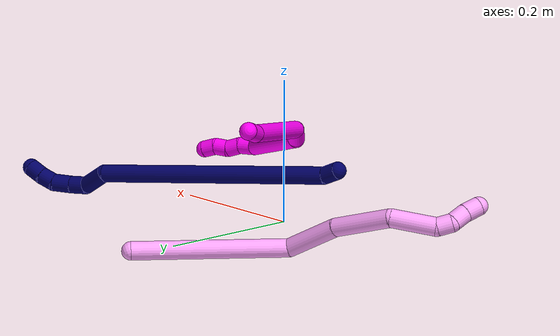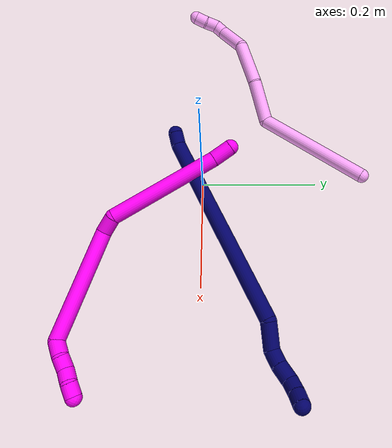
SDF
<sdf version="1.7">
 <world name="default">
  <model name="photoneo_s_sensor">
   <static>1</static>
   <pose>0 0 2 1.57079 1.57079 3.14159</pose>
   <link name="link">
    <inertial><mass>0.1</mass></inertial>
    <sensor name="sensor" type="depth">
     <update_rate>30</update_rate>
     <camera>
      <horizontal_fov>1.22</horizontal_fov>
      <image><width>1920</width><height>1200</height><format>B8G8R8</format></image>
      <clip><near>0.1</near><far>4</far></clip>
      <depth_camera><output>points</output></depth_camera>
     </camera>
     <plugin name="camera_plugin" filename="libgazebo_ros_depth_camera.so">
      <baseline>0.2</baseline>
      <alwaysOn>1</alwaysOn>
      <updateRate>0.0</updateRate>
      <cameraName>camera_ir</cameraName>
      <imageTopicName>/camera/color/image_raw</imageTopicName>
      <cameraInfoTopicName>/camera/color/camera_info</cameraInfoTopicName>
      <depthImageTopicName>/camera/depth/image_raw</depthImageTopicName>
      <depthImageCameraInfoTopicName>/camera/depth/camera_info</depthImageCameraInfoTopicName>
      <pointCloudTopicName>/camera/depth/points</pointCloudTopicName>
      <frameName>fr_optical</frameName>
      <pointCloudCutoff>0.1</pointCloudCutoff>
      <pointCloudCutoffMax>2.0</pointCloudCutoffMax>
      <distortionK1>0</distortionK1>
      <distortionK2>0</distortionK2>
      <distortionK3>0</distortionK3>
      <distortionT1>0</distortionT1>
      <distortionT2>0</distortionT2>
      <CxPrime>0</CxPrime>
      <Cx>0</Cx>
      <Cy>0</Cy>
      <focalLength>0</focalLength>
      <hackBaseline>0</hackBaseline>
     </plugin>
    </sensor>
   </link>
  </model>
  <model name="bin">
   <static>1</static>
   <link name="bottom">
    <collision name="collision-bottom">
     <pose>0 0 -0.01 0 -0 0</pose>
     <geometry><box><size>0.8 0.6 0.02</size></box></geometry>
     <surface>
      <friction><ode><mu>100</mu><mu2>100</mu2></ode></friction>
      <contact><collide_bitmask>65535</collide_bitmask></contact>
     </surface>
    </collision>
   </link>
   <link name="west_wall">
    <collision name="collision-west_wall">
     <pose>-0.41 0 0.1 0 -0 0</pose>
     <geometry><box><size>0.02 0.6 0.2</size></box></geometry>
     <surface>
      <friction><ode><mu>100</mu><mu2>100</mu2></ode></friction>
      <contact><collide_bitmask>65535</collide_bitmask></contact>
     </surface>
    </collision>
   </link>
   <link name="east_wall">
    <collision name="collision-east_wall">
     <pose>0.41 0 0.1 0 -0 0</pose>
     <geometry><box><size>0.02 0.6 0.2</size></box></geometry>
     <surface>
      <friction><ode><mu>100</mu><mu2>100</mu2></ode></friction>
      <contact><collide_bitmask>65535</collide_bitmask></contact>
     </surface>
    </collision>
   </link>
   <link name="south_wall">
    <collision name="collision-south_wall">
     <pose>0 -0.31 0.1 0 -0 0</pose>
     <geometry><box><size>0.8 0.02 0.2</size></box></geometry>
     <surface>
      <friction><ode><mu>100</mu><mu2>100</mu2></ode></friction>
      <contact><collide_bitmask>65535</collide_bitmask></contact>
     </surface>
    </collision>
   </link>
   <link name="north_wall">
    <collision name="collision-north_wall">
     <pose>0 0.31 0.1 0 -0 0</pose>
     <geometry><box><size>0.8 0.02 0.2</size></box></geometry>
     <surface>
      <friction><ode><mu>100</mu><mu2>100</mu2></ode></friction>
      <contact><collide_bitmask>65535</collide_bitmask></contact>
     </surface>
    </collision>
   </link>
  </model>
  <model name="4">
   <static>0</static>
   <link name="4">
    <collision name="collision-cylinder-e_1_1_4">
     <pose>-0.009597 -0.035598 0.098198 0.34778 -0.09162 -0.016105</pose>
     <geometry><cylinder><radius>0.0125</radius><length>0.209782</length></cylinder></geometry>
     <surface>
      <friction><ode><mu>1.16</mu><mu2>1.16</mu2><slip1>0</slip1><slip2>0</slip2></ode></friction>
      <contact><ode><kp>1e+06</kp><kd>1</kd><max_vel>0</max_vel><min_depth>0.001</min_depth></ode></contact>
     </surface>
    </collision>
    <visual name="visual-cylinder-e_1_1_4">
     <pose>-0.009597 -0.035598 0.098198 0.34778 -0.09162 -0.016105</pose>
     <geometry><cylinder><radius>0.0125</radius><length>0.209782</length></cylinder></geometry>
     <material><ambient>1 0.65098 0.996078 1</ambient></material>
    </visual>
    <collision name="collision-cylinder-e_2_4_5">
     <pose>-0.035917 -0.058673 0.23008 -0.355927 -0.435564 0.079564</pose>
     <geometry><cylinder><radius>0.0125</radius><length>0.079276</length></cylinder></geometry>
     <surface>
      <friction><ode><mu>1.16</mu><mu2>1.16</mu2><slip1>0</slip1><slip2>0</slip2></ode></friction>
      <contact><ode><kp>1e+06</kp><kd>1</kd><max_vel>0</max_vel><min_depth>0.001</min_depth></ode></contact>
     </surface>
    </collision>
    <visual name="visual-cylinder-e_2_4_5">
     <pose>-0.035917 -0.058673 0.23008 -0.355927 -0.435564 0.079564</pose>
     <geometry><cylinder><radius>0.0125</radius><length>0.079276</length></cylinder></geometry>
     <material><ambient>1 0.65098 0.996078 1</ambient></material>
    </visual>
    <collision name="collision-cylinder-e_3_5_6">
     <pose>-0.074283 -0.040933 0.299748 -0.143997 -0.536884 0.039674</pose>
     <geometry><cylinder><radius>0.0125</radius><length>0.084626</length></cylinder></geometry>
     <surface>
      <friction><ode><mu>1.16</mu><mu2>1.16</mu2><slip1>0</slip1><slip2>0</slip2></ode></friction>
      <contact><ode><kp>1e+06</kp><kd>1</kd><max_vel>0</max_vel><min_depth>0.001</min_depth></ode></contact>
     </surface>
    </collision>
    <visual name="visual-cylinder-e_3_5_6">
     <pose>-0.074283 -0.040933 0.299748 -0.143997 -0.536884 0.039674</pose>
     <geometry><cylinder><radius>0.0125</radius><length>0.084626</length></cylinder></geometry>
     <material><ambient>1 0.65098 0.996078 1</ambient></material>
    </visual>
    <collision name="collision-cylinder-e_4_6_7">
     <pose>-0.108268 -0.04682 0.361531 0.406437 -0.414061 -0.086509</pose>
     <geometry><cylinder><radius>0.0125</radius><length>0.061361</length></cylinder></geometry>
     <surface>
      <friction><ode><mu>1.16</mu><mu2>1.16</mu2><slip1>0</slip1><slip2>0</slip2></ode></friction>
      <contact><ode><kp>1e+06</kp><kd>1</kd><max_vel>0</max_vel><min_depth>0.001</min_depth></ode></contact>
     </surface>
    </collision>
    <visual name="visual-cylinder-e_4_6_7">
     <pose>-0.108268 -0.04682 0.361531 0.406437 -0.414061 -0.086509</pose>
     <geometry><cylinder><radius>0.0125</radius><length>0.061361</length></cylinder></geometry>
     <material><ambient>1 0.65098 0.996078 1</ambient></material>
    </visual>
    <collision name="collision-cylinder-e_5_7_8">
     <pose>-0.121209 -0.058672 0.397572 0.072902 -0.058137 -0.002121</pose>
     <geometry><cylinder><radius>0.0125</radius><length>0.020572</length></cylinder></geometry>
     <surface>
      <friction><ode><mu>1.16</mu><mu2>1.16</mu2><slip1>0</slip1><slip2>0</slip2></ode></friction>
      <contact><ode><kp>1e+06</kp><kd>1</kd><max_vel>0</max_vel><min_depth>0.001</min_depth></ode></contact>
     </surface>
    </collision>
    <visual name="visual-cylinder-e_5_7_8">
     <pose>-0.121209 -0.058672 0.397572 0.072902 -0.058137 -0.002121</pose>
     <geometry><cylinder><radius>0.0125</radius><length>0.020572</length></cylinder></geometry>
     <material><ambient>1 0.65098 0.996078 1</ambient></material>
    </visual>
    <collision name="collision-cylinder-e_6_8_9">
     <pose>-0.115632 -0.059876 0.417553 0.046845 0.56459 0.013589</pose>
     <geometry><cylinder><radius>0.0125</radius><length>0.023083</length></cylinder></geometry>
     <surface>
      <friction><ode><mu>1.16</mu><mu2>1.16</mu2><slip1>0</slip1><slip2>0</slip2></ode></friction>
      <contact><ode><kp>1e+06</kp><kd>1</kd><max_vel>0</max_vel><min_depth>0.001</min_depth></ode></contact>
     </surface>
    </collision>
    <visual name="visual-cylinder-e_6_8_9">
     <pose>-0.115632 -0.059876 0.417553 0.046845 0.56459 0.013589</pose>
     <geometry><cylinder><radius>0.0125</radius><length>0.023083</length></cylinder></geometry>
     <material><ambient>1 0.65098 0.996078 1</ambient></material>
    </visual>
    <collision name="collision-cylinder-e_7_9_2">
     <pose>-0.105895 -0.061388 0.437275 0.105258 0.340912 0.018134</pose>
     <geometry><cylinder><radius>0.0125</radius><length>0.0213</length></cylinder></geometry>
     <surface>
      <friction><ode><mu>1.16</mu><mu2>1.16</mu2><slip1>0</slip1><slip2>0</slip2></ode></friction>
      <contact><ode><kp>1e+06</kp><kd>1</kd><max_vel>0</max_vel><min_depth>0.001</min_depth></ode></contact>
     </surface>
    </collision>
    <visual name="visual-cylinder-e_7_9_2">
     <pose>-0.105895 -0.061388 0.437275 0.105258 0.340912 0.018134</pose>
     <geometry><cylinder><radius>0.0125</radius><length>0.0213</length></cylinder></geometry>
     <material><ambient>1 0.65098 0.996078 1</ambient></material>
    </visual>
    <collision name="collision-sphere-2">
     <pose>-0.102334 -0.062442 0.447256 0 -0 0</pose>
     <geometry><sphere><radius>0.0125</radius></sphere></geometry>
     <surface>
      <friction><ode><mu>1.16</mu><mu2>1.16</mu2><slip1>0</slip1><slip2>0</slip2></ode></friction>
      <contact><ode><kp>1e+06</kp><kd>1</kd><max_vel>0</max_vel><min_depth>0.001</min_depth></ode></contact>
     </surface>
    </collision>
    <visual name="visual-sphere-2">
     <pose>-0.102334 -0.062442 0.447256 0 -0 0</pose>
     <geometry><sphere><radius>0.0125</radius></sphere></geometry>
     <material><ambient>1 0.65098 0.996078 1</ambient></material>
    </visual>
    <collision name="collision-sphere-9">
     <pose>-0.109456 -0.060333 0.427293 0 -0 0</pose>
     <geometry><sphere><radius>0.0125</radius></sphere></geometry>
     <surface>
      <friction><ode><mu>1.16</mu><mu2>1.16</mu2><slip1>0</slip1><slip2>0</slip2></ode></friction>
      <contact><ode><kp>1e+06</kp><kd>1</kd><max_vel>0</max_vel><min_depth>0.001</min_depth></ode></contact>
     </surface>
    </collision>
    <visual name="visual-sphere-9">
     <pose>-0.109456 -0.060333 0.427293 0 -0 0</pose>
     <geometry><sphere><radius>0.0125</radius></sphere></geometry>
     <material><ambient>1 0.65098 0.996078 1</ambient></material>
    </visual>
    <collision name="collision-sphere-4">
     <pose>-0.019193 -0.071196 0.196395 0 -0 0</pose>
     <geometry><sphere><radius>0.0125</radius></sphere></geometry>
     <surface>
      <friction><ode><mu>1.16</mu><mu2>1.16</mu2><slip1>0</slip1><slip2>0</slip2></ode></friction>
      <contact><ode><kp>1e+06</kp><kd>1</kd><max_vel>0</max_vel><min_depth>0.001</min_depth></ode></contact>
     </surface>
    </collision>
    <visual name="visual-sphere-4">
     <pose>-0.019193 -0.071196 0.196395 0 -0 0</pose>
     <geometry><sphere><radius>0.0125</radius></sphere></geometry>
     <material><ambient>1 0.65098 0.996078 1</ambient></material>
    </visual>
    <collision name="collision-sphere-1">
     <geometry><sphere><radius>0.0125</radius></sphere></geometry>
     <surface>
      <friction><ode><mu>1.16</mu><mu2>1.16</mu2><slip1>0</slip1><slip2>0</slip2></ode></friction>
      <contact><ode><kp>1e+06</kp><kd>1</kd><max_vel>0</max_vel><min_depth>0.001</min_depth></ode></contact>
     </surface>
    </collision>
    <visual name="visual-sphere-1">
     <geometry><sphere><radius>0.0125</radius></sphere></geometry>
     <material><ambient>1 0.65098 0.996078 1</ambient></material>
    </visual>
    <collision name="collision-sphere-8">
     <pose>-0.121807 -0.05942 0.407814 0 -0 0</pose>
     <geometry><sphere><radius>0.0125</radius></sphere></geometry>
     <surface>
      <friction><ode><mu>1.16</mu><mu2>1.16</mu2><slip1>0</slip1><slip2>0</slip2></ode></friction>
      <contact><ode><kp>1e+06</kp><kd>1</kd><max_vel>0</max_vel><min_depth>0.001</min_depth></ode></contact>
     </surface>
    </collision>
    <visual name="visual-sphere-8">
     <pose>-0.121807 -0.05942 0.407814 0 -0 0</pose>
     <geometry><sphere><radius>0.0125</radius></sphere></geometry>
     <material><ambient>1 0.65098 0.996078 1</ambient></material>
    </visual>
    <collision name="collision-sphere-5">
     <pose>-0.052642 -0.046151 0.263765 0 -0 0</pose>
     <geometry><sphere><radius>0.0125</radius></sphere></geometry>
     <surface>
      <friction><ode><mu>1.16</mu><mu2>1.16</mu2><slip1>0</slip1><slip2>0</slip2></ode></friction>
      <contact><ode><kp>1e+06</kp><kd>1</kd><max_vel>0</max_vel><min_depth>0.001</min_depth></ode></contact>
     </surface>
    </collision>
    <visual name="visual-sphere-5">
     <pose>-0.052642 -0.046151 0.263765 0 -0 0</pose>
     <geometry><sphere><radius>0.0125</radius></sphere></geometry>
     <material><ambient>1 0.65098 0.996078 1</ambient></material>
    </visual>
    <collision name="collision-sphere-6">
     <pose>-0.095924 -0.035716 0.335731 0 -0 0</pose>
     <geometry><sphere><radius>0.0125</radius></sphere></geometry>
     <surface>
      <friction><ode><mu>1.16</mu><mu2>1.16</mu2><slip1>0</slip1><slip2>0</slip2></ode></friction>
      <contact><ode><kp>1e+06</kp><kd>1</kd><max_vel>0</max_vel><min_depth>0.001</min_depth></ode></contact>
     </surface>
    </collision>
    <visual name="visual-sphere-6">
     <pose>-0.095924 -0.035716 0.335731 0 -0 0</pose>
     <geometry><sphere><radius>0.0125</radius></sphere></geometry>
     <material><ambient>1 0.65098 0.996078 1</ambient></material>
    </visual>
    <collision name="collision-sphere-7">
     <pose>-0.120612 -0.057924 0.387331 0 -0 0</pose>
     <geometry><sphere><radius>0.0125</radius></sphere></geometry>
     <surface>
      <friction><ode><mu>1.16</mu><mu2>1.16</mu2><slip1>0</slip1><slip2>0</slip2></ode></friction>
      <contact><ode><kp>1e+06</kp><kd>1</kd><max_vel>0</max_vel><min_depth>0.001</min_depth></ode></contact>
     </surface>
    </collision>
    <visual name="visual-sphere-7">
     <pose>-0.120612 -0.057924 0.387331 0 -0 0</pose>
     <geometry><sphere><radius>0.0125</radius></sphere></geometry>
     <material><ambient>1 0.65098 0.996078 1</ambient></material>
    </visual>
    <inertial>
     <pose>-0.050417 -0.044706 0.227043 0 -0 0</pose>
     <mass>0.5</mass>
     <inertia>
      <ixx>0.000868</ixx>
      <ixy>0</ixy>
      <ixz>0</ixz>
      <iyy>0.000838</iyy>
      <iyz>0</iyz>
      <izz>0.000411</izz>
     </inertia>
    </inertial>
   </link>
   <pose>-0.012131 0.283326 0.011519 1.19258 -0.271106 -0.57025</pose>
  </model>
  <model name="7">
   <static>0</static>
   <link name="7">
    <collision name="collision-cylinder-e_1_1_4">
     <pose>0.007846 0.002909 -0.008121 -2.79765 0.738125 -2.29746</pose>
     <geometry><cylinder><radius>0.0125</radius><length>0.023321</length></cylinder></geometry>
     <surface>
      <friction><ode><mu>1.16</mu><mu2>1.16</mu2><slip1>0</slip1><slip2>0</slip2></ode></friction>
      <contact><ode><kp>1e+06</kp><kd>1</kd><max_vel>0</max_vel><min_depth>0.001</min_depth></ode></contact>
     </surface>
    </collision>
    <visual name="visual-cylinder-e_1_1_4">
     <pose>0.007846 0.002909 -0.008121 -2.79765 0.738125 -2.29746</pose>
     <geometry><cylinder><radius>0.0125</radius><length>0.023321</length></cylinder></geometry>
     <material><ambient>0.003922 0 0.403922 1</ambient></material>
    </visual>
    <collision name="collision-cylinder-e_2_4_5">
     <pose>0.141293 0.092173 -0.09072 -2.28248 0.833612 -1.53675</pose>
     <geometry><cylinder><radius>0.0125</radius><length>0.339291</length></cylinder></geometry>
     <surface>
      <friction><ode><mu>1.16</mu><mu2>1.16</mu2><slip1>0</slip1><slip2>0</slip2></ode></friction>
      <contact><ode><kp>1e+06</kp><kd>1</kd><max_vel>0</max_vel><min_depth>0.001</min_depth></ode></contact>
     </surface>
    </collision>
    <visual name="visual-cylinder-e_2_4_5">
     <pose>0.141293 0.092173 -0.09072 -2.28248 0.833612 -1.53675</pose>
     <geometry><cylinder><radius>0.0125</radius><length>0.339291</length></cylinder></geometry>
     <material><ambient>0.003922 0 0.403922 1</ambient></material>
    </visual>
    <collision name="collision-cylinder-e_3_5_6">
     <pose>0.280324 0.180227 -0.181991 -3.04085 0.672179 -2.85495</pose>
     <geometry><cylinder><radius>0.0125</radius><length>0.043141</length></cylinder></geometry>
     <surface>
      <friction><ode><mu>1.16</mu><mu2>1.16</mu2><slip1>0</slip1><slip2>0</slip2></ode></friction>
      <contact><ode><kp>1e+06</kp><kd>1</kd><max_vel>0</max_vel><min_depth>0.001</min_depth></ode></contact>
     </surface>
    </collision>
    <visual name="visual-cylinder-e_3_5_6">
     <pose>0.280324 0.180227 -0.181991 -3.04085 0.672179 -2.85495</pose>
     <geometry><cylinder><radius>0.0125</radius><length>0.043141</length></cylinder></geometry>
     <material><ambient>0.003922 0 0.403922 1</ambient></material>
    </visual>
    <collision name="collision-cylinder-e_4_6_7">
     <pose>0.302946 0.187993 -0.203625 -2.24414 0.869371 -1.53447</pose>
     <geometry><cylinder><radius>0.0125</radius><length>0.024061</length></cylinder></geometry>
     <surface>
      <friction><ode><mu>1.16</mu><mu2>1.16</mu2><slip1>0</slip1><slip2>0</slip2></ode></friction>
      <contact><ode><kp>1e+06</kp><kd>1</kd><max_vel>0</max_vel><min_depth>0.001</min_depth></ode></contact>
     </surface>
    </collision>
    <visual name="visual-cylinder-e_4_6_7">
     <pose>0.302946 0.187993 -0.203625 -2.24414 0.869371 -1.53447</pose>
     <geometry><cylinder><radius>0.0125</radius><length>0.024061</length></cylinder></geometry>
     <material><ambient>0.003922 0 0.403922 1</ambient></material>
    </visual>
    <collision name="collision-cylinder-e_5_7_8">
     <pose>0.321552 0.202662 -0.212704 -2.02873 0.776335 -1.16316</pose>
     <geometry><cylinder><radius>0.0125</radius><length>0.026874</length></cylinder></geometry>
     <surface>
      <friction><ode><mu>1.16</mu><mu2>1.16</mu2><slip1>0</slip1><slip2>0</slip2></ode></friction>
      <contact><ode><kp>1e+06</kp><kd>1</kd><max_vel>0</max_vel><min_depth>0.001</min_depth></ode></contact>
     </surface>
    </collision>
    <visual name="visual-cylinder-e_5_7_8">
     <pose>0.321552 0.202662 -0.212704 -2.02873 0.776335 -1.16316</pose>
     <geometry><cylinder><radius>0.0125</radius><length>0.026874</length></cylinder></geometry>
     <material><ambient>0.003922 0 0.403922 1</ambient></material>
    </visual>
    <collision name="collision-cylinder-e_6_8_9">
     <pose>0.339925 0.216842 -0.21696 -1.5738 1.01363 -1.01618</pose>
     <geometry><cylinder><radius>0.0125</radius><length>0.02111</length></cylinder></geometry>
     <surface>
      <friction><ode><mu>1.16</mu><mu2>1.16</mu2><slip1>0</slip1><slip2>0</slip2></ode></friction>
      <contact><ode><kp>1e+06</kp><kd>1</kd><max_vel>0</max_vel><min_depth>0.001</min_depth></ode></contact>
     </surface>
    </collision>
    <visual name="visual-cylinder-e_6_8_9">
     <pose>0.339925 0.216842 -0.21696 -1.5738 1.01363 -1.01618</pose>
     <geometry><cylinder><radius>0.0125</radius><length>0.02111</length></cylinder></geometry>
     <material><ambient>0.003922 0 0.403922 1</ambient></material>
    </visual>
    <collision name="collision-cylinder-e_7_9_2">
     <pose>0.35876 0.22735 -0.215782 -1.33298 1.09661 -0.895709</pose>
     <geometry><cylinder><radius>0.0125</radius><length>0.0222</length></cylinder></geometry>
     <surface>
      <friction><ode><mu>1.16</mu><mu2>1.16</mu2><slip1>0</slip1><slip2>0</slip2></ode></friction>
      <contact><ode><kp>1e+06</kp><kd>1</kd><max_vel>0</max_vel><min_depth>0.001</min_depth></ode></contact>
     </surface>
    </collision>
    <visual name="visual-cylinder-e_7_9_2">
     <pose>0.35876 0.22735 -0.215782 -1.33298 1.09661 -0.895709</pose>
     <geometry><cylinder><radius>0.0125</radius><length>0.0222</length></cylinder></geometry>
     <material><ambient>0.003922 0 0.403922 1</ambient></material>
    </visual>
    <collision name="collision-sphere-2">
     <pose>0.368635 0.232275 -0.214588 0 -0 0</pose>
     <geometry><sphere><radius>0.0125</radius></sphere></geometry>
     <surface>
      <friction><ode><mu>1.16</mu><mu2>1.16</mu2><slip1>0</slip1><slip2>0</slip2></ode></friction>
      <contact><ode><kp>1e+06</kp><kd>1</kd><max_vel>0</max_vel><min_depth>0.001</min_depth></ode></contact>
     </surface>
    </collision>
    <visual name="visual-sphere-2">
     <pose>0.368635 0.232275 -0.214588 0 -0 0</pose>
     <geometry><sphere><radius>0.0125</radius></sphere></geometry>
     <material><ambient>0.003922 0 0.403922 1</ambient></material>
    </visual>
    <collision name="collision-sphere-9">
     <pose>0.348884 0.222424 -0.216976 0 -0 0</pose>
     <geometry><sphere><radius>0.0125</radius></sphere></geometry>
     <surface>
      <friction><ode><mu>1.16</mu><mu2>1.16</mu2><slip1>0</slip1><slip2>0</slip2></ode></friction>
      <contact><ode><kp>1e+06</kp><kd>1</kd><max_vel>0</max_vel><min_depth>0.001</min_depth></ode></contact>
     </surface>
    </collision>
    <visual name="visual-sphere-9">
     <pose>0.348884 0.222424 -0.216976 0 -0 0</pose>
     <geometry><sphere><radius>0.0125</radius></sphere></geometry>
     <material><ambient>0.003922 0 0.403922 1</ambient></material>
    </visual>
    <collision name="collision-sphere-4">
     <pose>0.015693 0.005817 -0.016241 0 -0 0</pose>
     <geometry><sphere><radius>0.0125</radius></sphere></geometry>
     <surface>
      <friction><ode><mu>1.16</mu><mu2>1.16</mu2><slip1>0</slip1><slip2>0</slip2></ode></friction>
      <contact><ode><kp>1e+06</kp><kd>1</kd><max_vel>0</max_vel><min_depth>0.001</min_depth></ode></contact>
     </surface>
    </collision>
    <visual name="visual-sphere-4">
     <pose>0.015693 0.005817 -0.016241 0 -0 0</pose>
     <geometry><sphere><radius>0.0125</radius></sphere></geometry>
     <material><ambient>0.003922 0 0.403922 1</ambient></material>
    </visual>
    <collision name="collision-sphere-1">
     <geometry><sphere><radius>0.0125</radius></sphere></geometry>
     <surface>
      <friction><ode><mu>1.16</mu><mu2>1.16</mu2><slip1>0</slip1><slip2>0</slip2></ode></friction>
      <contact><ode><kp>1e+06</kp><kd>1</kd><max_vel>0</max_vel><min_depth>0.001</min_depth></ode></contact>
     </surface>
    </collision>
    <visual name="visual-sphere-1">
     <geometry><sphere><radius>0.0125</radius></sphere></geometry>
     <material><ambient>0.003922 0 0.403922 1</ambient></material>
    </visual>
    <collision name="collision-sphere-8">
     <pose>0.330967 0.211261 -0.216943 0 -0 0</pose>
     <geometry><sphere><radius>0.0125</radius></sphere></geometry>
     <surface>
      <friction><ode><mu>1.16</mu><mu2>1.16</mu2><slip1>0</slip1><slip2>0</slip2></ode></friction>
      <contact><ode><kp>1e+06</kp><kd>1</kd><max_vel>0</max_vel><min_depth>0.001</min_depth></ode></contact>
     </surface>
    </collision>
    <visual name="visual-sphere-8">
     <pose>0.330967 0.211261 -0.216943 0 -0 0</pose>
     <geometry><sphere><radius>0.0125</radius></sphere></geometry>
     <material><ambient>0.003922 0 0.403922 1</ambient></material>
    </visual>
    <collision name="collision-sphere-5">
     <pose>0.266892 0.178529 -0.165198 0 -0 0</pose>
     <geometry><sphere><radius>0.0125</radius></sphere></geometry>
     <surface>
      <friction><ode><mu>1.16</mu><mu2>1.16</mu2><slip1>0</slip1><slip2>0</slip2></ode></friction>
      <contact><ode><kp>1e+06</kp><kd>1</kd><max_vel>0</max_vel><min_depth>0.001</min_depth></ode></contact>
     </surface>
    </collision>
    <visual name="visual-sphere-5">
     <pose>0.266892 0.178529 -0.165198 0 -0 0</pose>
     <geometry><sphere><radius>0.0125</radius></sphere></geometry>
     <material><ambient>0.003922 0 0.403922 1</ambient></material>
    </visual>
    <collision name="collision-sphere-6">
     <pose>0.293756 0.181924 -0.198783 0 -0 0</pose>
     <geometry><sphere><radius>0.0125</radius></sphere></geometry>
     <surface>
      <friction><ode><mu>1.16</mu><mu2>1.16</mu2><slip1>0</slip1><slip2>0</slip2></ode></friction>
      <contact><ode><kp>1e+06</kp><kd>1</kd><max_vel>0</max_vel><min_depth>0.001</min_depth></ode></contact>
     </surface>
    </collision>
    <visual name="visual-sphere-6">
     <pose>0.293756 0.181924 -0.198783 0 -0 0</pose>
     <geometry><sphere><radius>0.0125</radius></sphere></geometry>
     <material><ambient>0.003922 0 0.403922 1</ambient></material>
    </visual>
    <collision name="collision-sphere-7">
     <pose>0.312137 0.194062 -0.208466 0 -0 0</pose>
     <geometry><sphere><radius>0.0125</radius></sphere></geometry>
     <surface>
      <friction><ode><mu>1.16</mu><mu2>1.16</mu2><slip1>0</slip1><slip2>0</slip2></ode></friction>
      <contact><ode><kp>1e+06</kp><kd>1</kd><max_vel>0</max_vel><min_depth>0.001</min_depth></ode></contact>
     </surface>
    </collision>
    <visual name="visual-sphere-7">
     <pose>0.312137 0.194062 -0.208466 0 -0 0</pose>
     <geometry><sphere><radius>0.0125</radius></sphere></geometry>
     <material><ambient>0.003922 0 0.403922 1</ambient></material>
    </visual>
    <inertial>
     <pose>0.182574 0.117422 -0.117615 0 -0 0</pose>
     <mass>0.5</mass>
     <inertia>
      <ixx>-0.002105</ixx>
      <ixy>0</ixy>
      <ixz>0</ixz>
      <iyy>-0.000412</iyy>
      <iyz>0</iyz>
      <izz>-0.004119</izz>
     </inertia>
    </inertial>
   </link>
   <pose>-0.058152 -0.046579 0.07576 0.273974 -0.256162 -0.221568</pose>
  </model>
  <model name="10">
   <static>0</static>
   <link name="10">
    <collision name="collision-cylinder-e_1_1_4">
     <pose>0.005857 -0.00584 0.014207 0.390017 0.364264 0.072723</pose>
     <geometry><cylinder><radius>0.0125</radius><length>0.032878</length></cylinder></geometry>
     <surface>
      <friction><ode><mu>1.16</mu><mu2>1.16</mu2><slip1>0</slip1><slip2>0</slip2></ode></friction>
      <contact><ode><kp>1e+06</kp><kd>1</kd><max_vel>0</max_vel><min_depth>0.001</min_depth></ode></contact>
     </surface>
    </collision>
    <visual name="visual-cylinder-e_1_1_4">
     <pose>0.005857 -0.00584 0.014207 0.390017 0.364264 0.072723</pose>
     <geometry><cylinder><radius>0.0125</radius><length>0.032878</length></cylinder></geometry>
     <material><ambient>1 0 0.964706 1</ambient></material>
    </visual>
    <collision name="collision-cylinder-e_2_4_5">
     <pose>0.037975 -0.053992 0.103418 0.513626 0.296001 0.078266</pose>
     <geometry><cylinder><radius>0.0125</radius><length>0.180062</length></cylinder></geometry>
     <surface>
      <friction><ode><mu>1.16</mu><mu2>1.16</mu2><slip1>0</slip1><slip2>0</slip2></ode></friction>
      <contact><ode><kp>1e+06</kp><kd>1</kd><max_vel>0</max_vel><min_depth>0.001</min_depth></ode></contact>
     </surface>
    </collision>
    <visual name="visual-cylinder-e_2_4_5">
     <pose>0.037975 -0.053992 0.103418 0.513626 0.296001 0.078266</pose>
     <geometry><cylinder><radius>0.0125</radius><length>0.180062</length></cylinder></geometry>
     <material><ambient>1 0 0.964706 1</ambient></material>
    </visual>
    <collision name="collision-cylinder-e_3_5_6">
     <pose>0.07018 -0.094789 0.191472 -0.115606 0.424804 -0.024957</pose>
     <geometry><cylinder><radius>0.0125</radius><length>0.02884</length></cylinder></geometry>
     <surface>
      <friction><ode><mu>1.16</mu><mu2>1.16</mu2><slip1>0</slip1><slip2>0</slip2></ode></friction>
      <contact><ode><kp>1e+06</kp><kd>1</kd><max_vel>0</max_vel><min_depth>0.001</min_depth></ode></contact>
     </surface>
    </collision>
    <visual name="visual-cylinder-e_3_5_6">
     <pose>0.07018 -0.094789 0.191472 -0.115606 0.424804 -0.024957</pose>
     <geometry><cylinder><radius>0.0125</radius><length>0.02884</length></cylinder></geometry>
     <material><ambient>1 0 0.964706 1</ambient></material>
    </visual>
    <collision name="collision-cylinder-e_4_6_7">
     <pose>0.063133 -0.092201 0.289962 -0.012545 -0.150877 0.000948</pose>
     <geometry><cylinder><radius>0.0125</radius><length>0.172855</length></cylinder></geometry>
     <surface>
      <friction><ode><mu>1.16</mu><mu2>1.16</mu2><slip1>0</slip1><slip2>0</slip2></ode></friction>
      <contact><ode><kp>1e+06</kp><kd>1</kd><max_vel>0</max_vel><min_depth>0.001</min_depth></ode></contact>
     </surface>
    </collision>
    <visual name="visual-cylinder-e_4_6_7">
     <pose>0.063133 -0.092201 0.289962 -0.012545 -0.150877 0.000948</pose>
     <geometry><cylinder><radius>0.0125</radius><length>0.172855</length></cylinder></geometry>
     <material><ambient>1 0 0.964706 1</ambient></material>
    </visual>
    <collision name="collision-cylinder-e_5_7_8">
     <pose>0.041674 -0.086607 0.382702 -0.554616 -0.778355 0.232408</pose>
     <geometry><cylinder><radius>0.0125</radius><length>0.024123</length></cylinder></geometry>
     <surface>
      <friction><ode><mu>1.16</mu><mu2>1.16</mu2><slip1>0</slip1><slip2>0</slip2></ode></friction>
      <contact><ode><kp>1e+06</kp><kd>1</kd><max_vel>0</max_vel><min_depth>0.001</min_depth></ode></contact>
     </surface>
    </collision>
    <visual name="visual-cylinder-e_5_7_8">
     <pose>0.041674 -0.086607 0.382702 -0.554616 -0.778355 0.232408</pose>
     <geometry><cylinder><radius>0.0125</radius><length>0.024123</length></cylinder></geometry>
     <material><ambient>1 0 0.964706 1</ambient></material>
    </visual>
    <collision name="collision-cylinder-e_6_8_9">
     <pose>0.028101 -0.07579 0.396495 -0.769851 -0.513879 0.212097</pose>
     <geometry><cylinder><radius>0.0125</radius><length>0.020767</length></cylinder></geometry>
     <surface>
      <friction><ode><mu>1.16</mu><mu2>1.16</mu2><slip1>0</slip1><slip2>0</slip2></ode></friction>
      <contact><ode><kp>1e+06</kp><kd>1</kd><max_vel>0</max_vel><min_depth>0.001</min_depth></ode></contact>
     </surface>
    </collision>
    <visual name="visual-cylinder-e_6_8_9">
     <pose>0.028101 -0.07579 0.396495 -0.769851 -0.513879 0.212097</pose>
     <geometry><cylinder><radius>0.0125</radius><length>0.020767</length></cylinder></geometry>
     <material><ambient>1 0 0.964706 1</ambient></material>
    </visual>
    <collision name="collision-cylinder-e_7_9_10">
     <pose>0.015223 -0.066316 0.408807 -0.500079 -0.864557 0.234577</pose>
     <geometry><cylinder><radius>0.0125</radius><length>0.020437</length></cylinder></geometry>
     <surface>
      <friction><ode><mu>1.16</mu><mu2>1.16</mu2><slip1>0</slip1><slip2>0</slip2></ode></friction>
      <contact><ode><kp>1e+06</kp><kd>1</kd><max_vel>0</max_vel><min_depth>0.001</min_depth></ode></contact>
     </surface>
    </collision>
    <visual name="visual-cylinder-e_7_9_10">
     <pose>0.015223 -0.066316 0.408807 -0.500079 -0.864557 0.234577</pose>
     <geometry><cylinder><radius>0.0125</radius><length>0.020437</length></cylinder></geometry>
     <material><ambient>1 0 0.964706 1</ambient></material>
    </visual>
    <collision name="collision-cylinder-e_8_10_2">
     <pose>0.002462 -0.057493 0.421235 -0.70681 -0.521014 0.196037</pose>
     <geometry><cylinder><radius>0.0125</radius><length>0.020039</length></cylinder></geometry>
     <surface>
      <friction><ode><mu>1.16</mu><mu2>1.16</mu2><slip1>0</slip1><slip2>0</slip2></ode></friction>
      <contact><ode><kp>1e+06</kp><kd>1</kd><max_vel>0</max_vel><min_depth>0.001</min_depth></ode></contact>
     </surface>
    </collision>
    <visual name="visual-cylinder-e_8_10_2">
     <pose>0.002462 -0.057493 0.421235 -0.70681 -0.521014 0.196037</pose>
     <geometry><cylinder><radius>0.0125</radius><length>0.020039</length></cylinder></geometry>
     <material><ambient>1 0 0.964706 1</ambient></material>
    </visual>
    <collision name="collision-sphere-2">
     <pose>-0.002526 -0.05185 0.427843 0 -0 0</pose>
     <geometry><sphere><radius>0.0125</radius></sphere></geometry>
     <surface>
      <friction><ode><mu>1.16</mu><mu2>1.16</mu2><slip1>0</slip1><slip2>0</slip2></ode></friction>
      <contact><ode><kp>1e+06</kp><kd>1</kd><max_vel>0</max_vel><min_depth>0.001</min_depth></ode></contact>
     </surface>
    </collision>
    <visual name="visual-sphere-2">
     <pose>-0.002526 -0.05185 0.427843 0 -0 0</pose>
     <geometry><sphere><radius>0.0125</radius></sphere></geometry>
     <material><ambient>1 0 0.964706 1</ambient></material>
    </visual>
    <collision name="collision-sphere-10">
     <pose>0.007449 -0.063137 0.414627 0 -0 0</pose>
     <geometry><sphere><radius>0.0125</radius></sphere></geometry>
     <surface>
      <friction><ode><mu>1.16</mu><mu2>1.16</mu2><slip1>0</slip1><slip2>0</slip2></ode></friction>
      <contact><ode><kp>1e+06</kp><kd>1</kd><max_vel>0</max_vel><min_depth>0.001</min_depth></ode></contact>
     </surface>
    </collision>
    <visual name="visual-sphere-10">
     <pose>0.007449 -0.063137 0.414627 0 -0 0</pose>
     <geometry><sphere><radius>0.0125</radius></sphere></geometry>
     <material><ambient>1 0 0.964706 1</ambient></material>
    </visual>
    <collision name="collision-sphere-9">
     <pose>0.022997 -0.069496 0.402988 0 -0 0</pose>
     <geometry><sphere><radius>0.0125</radius></sphere></geometry>
     <surface>
      <friction><ode><mu>1.16</mu><mu2>1.16</mu2><slip1>0</slip1><slip2>0</slip2></ode></friction>
      <contact><ode><kp>1e+06</kp><kd>1</kd><max_vel>0</max_vel><min_depth>0.001</min_depth></ode></contact>
     </surface>
    </collision>
    <visual name="visual-sphere-9">
     <pose>0.022997 -0.069496 0.402988 0 -0 0</pose>
     <geometry><sphere><radius>0.0125</radius></sphere></geometry>
     <material><ambient>1 0 0.964706 1</ambient></material>
    </visual>
    <collision name="collision-sphere-4">
     <pose>0.011713 -0.01168 0.028414 0 -0 0</pose>
     <geometry><sphere><radius>0.0125</radius></sphere></geometry>
     <surface>
      <friction><ode><mu>1.16</mu><mu2>1.16</mu2><slip1>0</slip1><slip2>0</slip2></ode></friction>
      <contact><ode><kp>1e+06</kp><kd>1</kd><max_vel>0</max_vel><min_depth>0.001</min_depth></ode></contact>
     </surface>
    </collision>
    <visual name="visual-sphere-4">
     <pose>0.011713 -0.01168 0.028414 0 -0 0</pose>
     <geometry><sphere><radius>0.0125</radius></sphere></geometry>
     <material><ambient>1 0 0.964706 1</ambient></material>
    </visual>
    <collision name="collision-sphere-1">
     <geometry><sphere><radius>0.0125</radius></sphere></geometry>
     <surface>
      <friction><ode><mu>1.16</mu><mu2>1.16</mu2><slip1>0</slip1><slip2>0</slip2></ode></friction>
      <contact><ode><kp>1e+06</kp><kd>1</kd><max_vel>0</max_vel><min_depth>0.001</min_depth></ode></contact>
     </surface>
    </collision>
    <visual name="visual-sphere-1">
     <geometry><sphere><radius>0.0125</radius></sphere></geometry>
     <material><ambient>1 0 0.964706 1</ambient></material>
    </visual>
    <collision name="collision-sphere-8">
     <pose>0.033205 -0.082084 0.390003 0 -0 0</pose>
     <geometry><sphere><radius>0.0125</radius></sphere></geometry>
     <surface>
      <friction><ode><mu>1.16</mu><mu2>1.16</mu2><slip1>0</slip1><slip2>0</slip2></ode></friction>
      <contact><ode><kp>1e+06</kp><kd>1</kd><max_vel>0</max_vel><min_depth>0.001</min_depth></ode></contact>
     </surface>
    </collision>
    <visual name="visual-sphere-8">
     <pose>0.033205 -0.082084 0.390003 0 -0 0</pose>
     <geometry><sphere><radius>0.0125</radius></sphere></geometry>
     <material><ambient>1 0 0.964706 1</ambient></material>
    </visual>
    <collision name="collision-sphere-5">
     <pose>0.064237 -0.096304 0.178422 0 -0 0</pose>
     <geometry><sphere><radius>0.0125</radius></sphere></geometry>
     <surface>
      <friction><ode><mu>1.16</mu><mu2>1.16</mu2><slip1>0</slip1><slip2>0</slip2></ode></friction>
      <contact><ode><kp>1e+06</kp><kd>1</kd><max_vel>0</max_vel><min_depth>0.001</min_depth></ode></contact>
     </surface>
    </collision>
    <visual name="visual-sphere-5">
     <pose>0.064237 -0.096304 0.178422 0 -0 0</pose>
     <geometry><sphere><radius>0.0125</radius></sphere></geometry>
     <material><ambient>1 0 0.964706 1</ambient></material>
    </visual>
    <collision name="collision-sphere-6">
     <pose>0.076123 -0.093273 0.204523 0 -0 0</pose>
     <geometry><sphere><radius>0.0125</radius></sphere></geometry>
     <surface>
      <friction><ode><mu>1.16</mu><mu2>1.16</mu2><slip1>0</slip1><slip2>0</slip2></ode></friction>
      <contact><ode><kp>1e+06</kp><kd>1</kd><max_vel>0</max_vel><min_depth>0.001</min_depth></ode></contact>
     </surface>
    </collision>
    <visual name="visual-sphere-6">
     <pose>0.076123 -0.093273 0.204523 0 -0 0</pose>
     <geometry><sphere><radius>0.0125</radius></sphere></geometry>
     <material><ambient>1 0 0.964706 1</ambient></material>
    </visual>
    <collision name="collision-sphere-7">
     <pose>0.050142 -0.091129 0.3754 0 -0 0</pose>
     <geometry><sphere><radius>0.0125</radius></sphere></geometry>
     <surface>
      <friction><ode><mu>1.16</mu><mu2>1.16</mu2><slip1>0</slip1><slip2>0</slip2></ode></friction>
      <contact><ode><kp>1e+06</kp><kd>1</kd><max_vel>0</max_vel><min_depth>0.001</min_depth></ode></contact>
     </surface>
    </collision>
    <visual name="visual-sphere-7">
     <pose>0.050142 -0.091129 0.3754 0 -0 0</pose>
     <geometry><sphere><radius>0.0125</radius></sphere></geometry>
     <material><ambient>1 0 0.964706 1</ambient></material>
    </visual>
    <inertial>
     <pose>0.043833 -0.069511 0.217987 0 -0 0</pose>
     <mass>0.5</mass>
     <inertia>
      <ixx>0.000953</ixx>
      <ixy>0</ixy>
      <ixz>0</ixz>
      <iyy>0.000919</iyy>
      <iyz>0</iyz>
      <izz>0.000181</izz>
     </inertia>
    </inertial>
   </link>
   <pose>0.02009 0.047772 0.132224 -2.0717 0.701236 -2.39165</pose>
  </model>
 </world>
</sdf>
